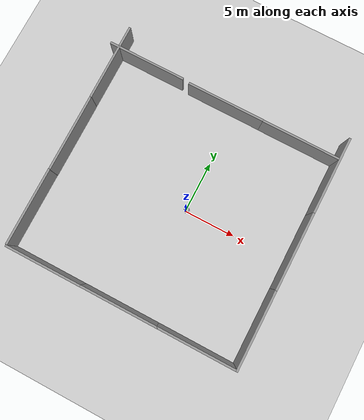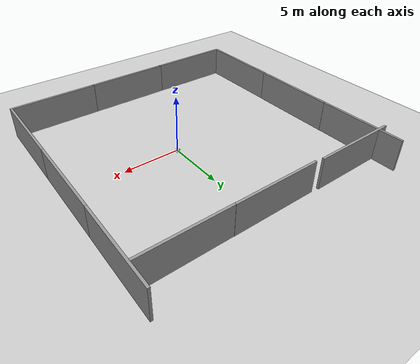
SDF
<sdf version="1.7">
 <world name="default">
  <light name="sun" type="directional">
   <pose>0 0 10 0 -0 0</pose>
   <diffuse>0.8 0.8 0.8 1</diffuse>
   <specular>0.2 0.2 0.2 1</specular>
   <attenuation>
    <range>1000</range>
    <constant>0.9</constant>
    <linear>0.01</linear>
    <quadratic>0.001</quadratic>
   </attenuation>
   <direction>-0.5 0.1 -0.9</direction>
   <spot><inner_angle>0</inner_angle><outer_angle>0</outer_angle><falloff>0</falloff></spot>
  </light>
  <model name="ground_plane">
   <static>1</static>
   <link name="link">
    <collision name="collision">
     <geometry><plane><normal>0 0 1</normal><size>100 100</size></plane></geometry>
     <surface>
      <contact><collide_bitmask>65535</collide_bitmask></contact>
      <friction><ode><mu>100</mu><mu2>50</mu2></ode></friction>
     </surface>
    </collision>
    <visual name="visual">
     <cast_shadows>0</cast_shadows>
     <geometry><plane><normal>0 0 1</normal><size>100 100</size></plane></geometry>
     <material>
      <script><uri>file://media/materials/scripts/gazebo.material</uri><name>Gazebo/Grey</name></script>
     </material>
    </visual>
   </link>
  </model>
  <gravity>0 0 -9.8</gravity>
  <magnetic_field>6e-06 2.3e-05 -4.2e-05</magnetic_field>
  <atmosphere type="adiabatic"/>
  <physics type="ode">
   <max_step_size>0.001</max_step_size>
   <real_time_factor>1</real_time_factor>
   <real_time_update_rate>1000</real_time_update_rate>
  </physics>
  <scene><ambient>0.4 0.4 0.4 1</ambient><background>0.7 0.7 0.7 1</background><shadows>1</shadows></scene>
  <audio><device>default</device></audio>
  <spherical_coordinates>
   <surface_model>EARTH_WGS84</surface_model>
   <latitude_deg>0</latitude_deg>
   <longitude_deg>0</longitude_deg>
   <elevation>0</elevation>
   <heading_deg>0</heading_deg>
  </spherical_coordinates>
  <model name="my_bot">
   <link name="base_link">
    <inertial>
     <pose>0.196025 0 0.024659 0 -0 0</pose>
     <mass>0.8</mass>
     <inertia>
      <ixx>0.0056935</ixx>
      <ixy>0</ixy>
      <ixz>0.00394807</ixz>
      <iyy>0.0206701</iyy>
      <iyz>0</iyz>
      <izz>0.0226846</izz>
     </inertia>
    </inertial>
    <collision name="base_link_fixed_joint_lump__chassis_collision">
     <pose>0.15012 0 0.039565 0 -0 0</pose>
     <geometry><box><size>0.448 0.3 0.07913</size></box></geometry>
    </collision>
    <collision name="base_link_fixed_joint_lump__caster_wheel_collision_1">
     <pose>0.38474 0 -0.045275 0 -0 0</pose>
     <geometry><sphere><radius>0.032225</radius></sphere></geometry>
     <surface><friction><ode><mu>0.001</mu><mu2>0.001</mu2></ode></friction></surface>
    </collision>
    <collision name="base_link_fixed_joint_lump__laser_frame_collision_2">
     <pose>0.04812 0 0.09 0 -0 0</pose>
     <geometry><cylinder><length>0.05</length><radius>0.05</radius></cylinder></geometry>
    </collision>
    <visual name="base_link_fixed_joint_lump__chassis_visual">
     <pose>0.15012 0 0.039565 0 -0 0</pose>
     <geometry><box><size>0.448 0.3 0.07913</size></box></geometry>
     <material>
      <script><name>Gazebo/Grey</name><uri>file://media/materials/scripts/gazebo.material</uri></script>
     </material>
    </visual>
    <visual name="base_link_fixed_joint_lump__caster_wheel_visual_1">
     <pose>0.38474 0 -0.045275 0 -0 0</pose>
     <geometry><sphere><radius>0.032225</radius></sphere></geometry>
     <material>
      <script><name>Gazebo/Blue</name><uri>file://media/materials/scripts/gazebo.material</uri></script>
     </material>
    </visual>
    <visual name="base_link_fixed_joint_lump__laser_frame_visual_2">
     <pose>0.04812 0 0.09 0 -0 0</pose>
     <geometry><cylinder><length>0.05</length><radius>0.05</radius></cylinder></geometry>
     <material>
      <script><name>Gazebo/Black</name><uri>file://media/materials/scripts/gazebo.material</uri></script>
     </material>
    </visual>
    <sensor name="laser" type="ray">
     <visualize>1</visualize>
     <update_rate>10</update_rate>
     <ray>
      <scan>
       <horizontal>
        <samples>360</samples>
        <min_angle>-3.14</min_angle>
        <max_angle>3.14</max_angle>
        <resolution>1</resolution>
       </horizontal>
       <vertical><samples>1</samples><min_angle>0</min_angle><max_angle>0</max_angle></vertical>
      </scan>
      <range><min>0.3</min><max>12</max></range>
     </ray>
     <plugin name="laser_controller" filename="libgazebo_ros_ray_sensor.so">
      <ros><argument>~/out:=scan</argument></ros>
      <output_type>sensor_msgs/LaserScan</output_type>
      <frame_name>laser_frame</frame_name>
     </plugin>
     <pose>0.04812 0 0.09 0 -0 0</pose>
    </sensor>
   </link>
   <joint name="left_wheel_joint" type="revolute">
    <pose relative_to="base_link">0 0.169 0 -1.5708 0 0</pose>
    <parent>base_link</parent>
    <child>left_wheel</child>
    <axis>
     <xyz>0 0 1</xyz>
     <limit><lower>-1e+16</lower><upper>1e+16</upper></limit>
     <dynamics><spring_reference>0</spring_reference><spring_stiffness>0</spring_stiffness></dynamics>
    </axis>
   </joint>
   <link name="left_wheel">
    <pose relative_to="left_wheel_joint">0 0 0 0 -0 0</pose>
    <inertial>
     <mass>0.5</mass>
     <inertia>
      <ixx>0.000813702</ixx>
      <ixy>0</ixy>
      <ixz>0</ixz>
      <iyy>0.000813702</iyy>
      <iyz>0</iyz>
      <izz>0.00150156</izz>
     </inertia>
    </inertial>
    <collision name="left_wheel_collision">
     <geometry><sphere><radius>0.0775</radius></sphere></geometry>
    </collision>
    <visual name="left_wheel_visual">
     <geometry><cylinder><length>0.03886</length><radius>0.0775</radius></cylinder></geometry>
     <material>
      <script><name>Gazebo/Purple</name><uri>file://media/materials/scripts/gazebo.material</uri></script>
     </material>
    </visual>
   </link>
   <joint name="right_wheel_joint" type="revolute">
    <pose relative_to="base_link">0 -0.169 0 1.5708 -0 0</pose>
    <parent>base_link</parent>
    <child>right_wheel</child>
    <axis>
     <xyz>0 0 -1</xyz>
     <limit><lower>-1e+16</lower><upper>1e+16</upper></limit>
     <dynamics><spring_reference>0</spring_reference><spring_stiffness>0</spring_stiffness></dynamics>
    </axis>
   </joint>
   <link name="right_wheel">
    <pose relative_to="right_wheel_joint">0 0 0 0 -0 0</pose>
    <inertial>
     <mass>0.5</mass>
     <inertia>
      <ixx>0.000813702</ixx>
      <ixy>0</ixy>
      <ixz>0</ixz>
      <iyy>0.000813702</iyy>
      <iyz>0</iyz>
      <izz>0.00150156</izz>
     </inertia>
    </inertial>
    <collision name="right_wheel_collision">
     <geometry><sphere><radius>0.0775</radius></sphere></geometry>
    </collision>
    <visual name="right_wheel_visual">
     <geometry><cylinder><length>0.03886</length><radius>0.0775</radius></cylinder></geometry>
     <material>
      <script><name>Gazebo/Green</name><uri>file://media/materials/scripts/gazebo.material</uri></script>
     </material>
    </visual>
   </link>
   <static>0</static>
   <plugin name="gazebo_ros2_control" filename="libgazebo_ros2_control.so">
    <parameters>/home/alex/mower_ws/install/mower_bot/share/mower_bot/config/my_controllers.yaml</parameters>
    <parameters>/home/alex/mower_ws/install/mower_bot/share/mower_bot/config/gaz_ros2_ctl_use_sim.yaml</parameters>
   </plugin>
   <pose>-0.013048 0.02264 0.077498 -1.5e-05 -6e-06 0.846134</pose>
  </model>
  <model name="grey_wall">
   <static>1</static>
   <link name="link">
    <pose>0 0 1.4 0 -0 0</pose>
    <collision name="collision"><geometry><box><size>7.5 0.2 2.8</size></box></geometry></collision>
    <visual name="visual">
     <cast_shadows>0</cast_shadows>
     <geometry><box><size>7.5 0.2 2.8</size></box></geometry>
     <material>
      <script>
       <uri>model://grey_wall/materials/scripts</uri>
       <uri>model://grey_wall/materials/textures</uri>
       <name>vrc/grey_wall</name>
      </script>
     </material>
    </visual>
   </link>
   <pose>-1.23935 10.1536 0 0 -0 0</pose>
  </model>
  <model name="grey_wall_clone">
   <static>1</static>
   <link name="link">
    <pose>0 0 1.4 0 -0 0</pose>
    <collision name="collision"><geometry><box><size>7.5 0.2 2.8</size></box></geometry></collision>
    <visual name="visual">
     <cast_shadows>0</cast_shadows>
     <geometry><box><size>7.5 0.2 2.8</size></box></geometry>
     <material>
      <script>
       <uri>model://grey_wall/materials/scripts</uri>
       <uri>model://grey_wall/materials/textures</uri>
       <name>vrc/grey_wall</name>
      </script>
     </material>
    </visual>
   </link>
   <pose>6.22646 10.1371 0 0 -0 0</pose>
  </model>
  <model name="grey_wall_clone_0">
   <static>1</static>
   <link name="link">
    <pose>0 0 1.4 0 -0 0</pose>
    <collision name="collision"><geometry><box><size>7.5 0.2 2.8</size></box></geometry></collision>
    <visual name="visual">
     <cast_shadows>0</cast_shadows>
     <geometry><box><size>7.5 0.2 2.8</size></box></geometry>
     <material>
      <script>
       <uri>model://grey_wall/materials/scripts</uri>
       <uri>model://grey_wall/materials/textures</uri>
       <name>vrc/grey_wall</name>
      </script>
     </material>
    </visual>
   </link>
   <pose>-9.36424 10.2626 0 0 -0 0</pose>
  </model>
  <model name="grey_wall_clone_1">
   <static>1</static>
   <link name="link">
    <pose>0 0 1.4 0 -0 0</pose>
    <collision name="collision"><geometry><box><size>7.5 0.2 2.8</size></box></geometry></collision>
    <visual name="visual">
     <cast_shadows>0</cast_shadows>
     <geometry><box><size>7.5 0.2 2.8</size></box></geometry>
     <material>
      <script>
       <uri>model://grey_wall/materials/scripts</uri>
       <uri>model://grey_wall/materials/textures</uri>
       <name>vrc/grey_wall</name>
      </script>
     </material>
    </visual>
   </link>
   <pose>6.2752 -10.0847 0 0 -0 0</pose>
  </model>
  <model name="grey_wall_clone_2">
   <static>1</static>
   <link name="link">
    <pose>0 0 1.4 0 -0 0</pose>
    <collision name="collision"><geometry><box><size>7.5 0.2 2.8</size></box></geometry></collision>
    <visual name="visual">
     <cast_shadows>0</cast_shadows>
     <geometry><box><size>7.5 0.2 2.8</size></box></geometry>
     <material>
      <script>
       <uri>model://grey_wall/materials/scripts</uri>
       <uri>model://grey_wall/materials/textures</uri>
       <name>vrc/grey_wall</name>
      </script>
     </material>
    </visual>
   </link>
   <pose>-1.10473 -10.0896 0 0 -0 0</pose>
  </model>
  <model name="grey_wall_clone_3">
   <static>1</static>
   <link name="link">
    <pose>0 0 1.4 0 -0 0</pose>
    <collision name="collision"><geometry><box><size>7.5 0.2 2.8</size></box></geometry></collision>
    <visual name="visual">
     <cast_shadows>0</cast_shadows>
     <geometry><box><size>7.5 0.2 2.8</size></box></geometry>
     <material>
      <script>
       <uri>model://grey_wall/materials/scripts</uri>
       <uri>model://grey_wall/materials/textures</uri>
       <name>vrc/grey_wall</name>
      </script>
     </material>
    </visual>
   </link>
   <pose>-8.46003 -10.0995 0 0 -0 0</pose>
  </model>
  <model name="grey_wall_clone_4">
   <static>1</static>
   <link name="link">
    <pose>0 0 1.4 0 -0 0</pose>
    <collision name="collision"><geometry><box><size>7.5 0.2 2.8</size></box></geometry></collision>
    <visual name="visual">
     <cast_shadows>0</cast_shadows>
     <geometry><box><size>7.5 0.2 2.8</size></box></geometry>
     <material>
      <script>
       <uri>model://grey_wall/materials/scripts</uri>
       <uri>model://grey_wall/materials/textures</uri>
       <name>vrc/grey_wall</name>
      </script>
     </material>
    </visual>
   </link>
   <pose>-12.1948 -6.27337 0 0 -0 1.57377</pose>
  </model>
  <model name="grey_wall_clone_4_clone">
   <static>1</static>
   <link name="link">
    <pose>0 0 1.4 0 -0 0</pose>
    <collision name="collision"><geometry><box><size>7.5 0.2 2.8</size></box></geometry></collision>
    <visual name="visual">
     <cast_shadows>0</cast_shadows>
     <geometry><box><size>7.5 0.2 2.8</size></box></geometry>
     <material>
      <script>
       <uri>model://grey_wall/materials/scripts</uri>
       <uri>model://grey_wall/materials/textures</uri>
       <name>vrc/grey_wall</name>
      </script>
     </material>
    </visual>
   </link>
   <pose>10.1015 -6.4182 0 0 -0 1.57377</pose>
  </model>
  <model name="grey_wall_clone_4_clone_0">
   <static>1</static>
   <link name="link">
    <pose>0 0 1.4 0 -0 0</pose>
    <collision name="collision"><geometry><box><size>7.5 0.2 2.8</size></box></geometry></collision>
    <visual name="visual">
     <cast_shadows>0</cast_shadows>
     <geometry><box><size>7.5 0.2 2.8</size></box></geometry>
     <material>
      <script>
       <uri>model://grey_wall/materials/scripts</uri>
       <uri>model://grey_wall/materials/textures</uri>
       <name>vrc/grey_wall</name>
      </script>
     </material>
    </visual>
   </link>
   <pose>10.0835 1.03166 0 0 -0 1.57377</pose>
  </model>
  <model name="grey_wall_clone_4_clone_1">
   <static>1</static>
   <link name="link">
    <pose>0 0 1.4 0 -0 0</pose>
    <collision name="collision"><geometry><box><size>7.5 0.2 2.8</size></box></geometry></collision>
    <visual name="visual">
     <cast_shadows>0</cast_shadows>
     <geometry><box><size>7.5 0.2 2.8</size></box></geometry>
     <material>
      <script>
       <uri>model://grey_wall/materials/scripts</uri>
       <uri>model://grey_wall/materials/textures</uri>
       <name>vrc/grey_wall</name>
      </script>
     </material>
    </visual>
   </link>
   <pose>10.0671 8.53418 0 0 -0 1.57377</pose>
  </model>
  <model name="grey_wall_clone_4_clone_2">
   <static>1</static>
   <link name="link">
    <pose>0 0 1.4 0 -0 0</pose>
    <collision name="collision"><geometry><box><size>7.5 0.2 2.8</size></box></geometry></collision>
    <visual name="visual">
     <cast_shadows>0</cast_shadows>
     <geometry><box><size>7.5 0.2 2.8</size></box></geometry>
     <material>
      <script>
       <uri>model://grey_wall/materials/scripts</uri>
       <uri>model://grey_wall/materials/textures</uri>
       <name>vrc/grey_wall</name>
      </script>
     </material>
    </visual>
   </link>
   <pose>-12.1964 1.16589 0 0 -0 1.57377</pose>
  </model>
  <model name="grey_wall_clone_4_clone_3">
   <static>1</static>
   <link name="link">
    <pose>0 0 1.4 0 -0 0</pose>
    <collision name="collision"><geometry><box><size>7.5 0.2 2.8</size></box></geometry></collision>
    <visual name="visual">
     <cast_shadows>0</cast_shadows>
     <geometry><box><size>7.5 0.2 2.8</size></box></geometry>
     <material>
      <script>
       <uri>model://grey_wall/materials/scripts</uri>
       <uri>model://grey_wall/materials/textures</uri>
       <name>vrc/grey_wall</name>
      </script>
     </material>
    </visual>
   </link>
   <pose>-12.2261 8.60223 0 0 -0 1.57377</pose>
  </model>
 </world>
</sdf>
